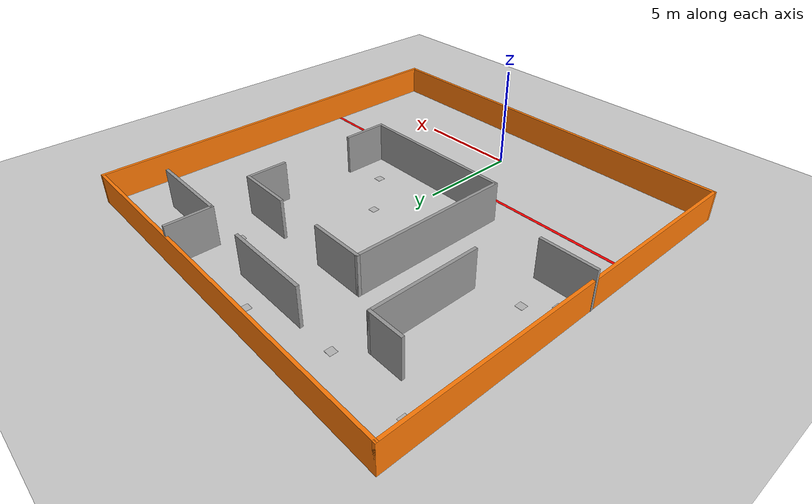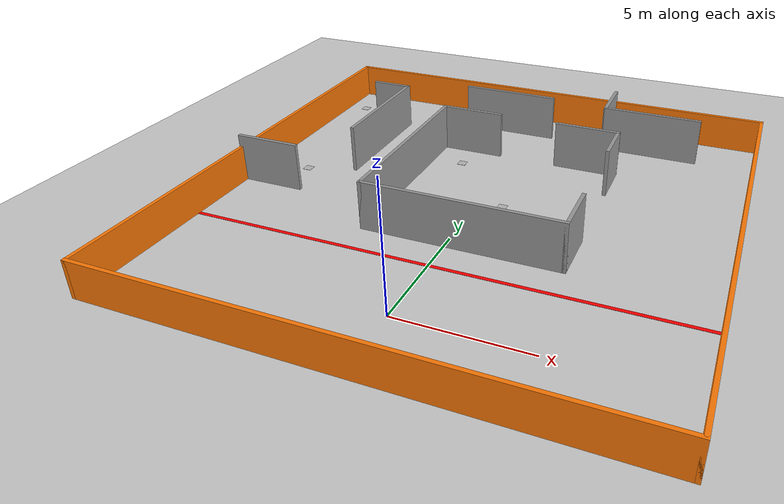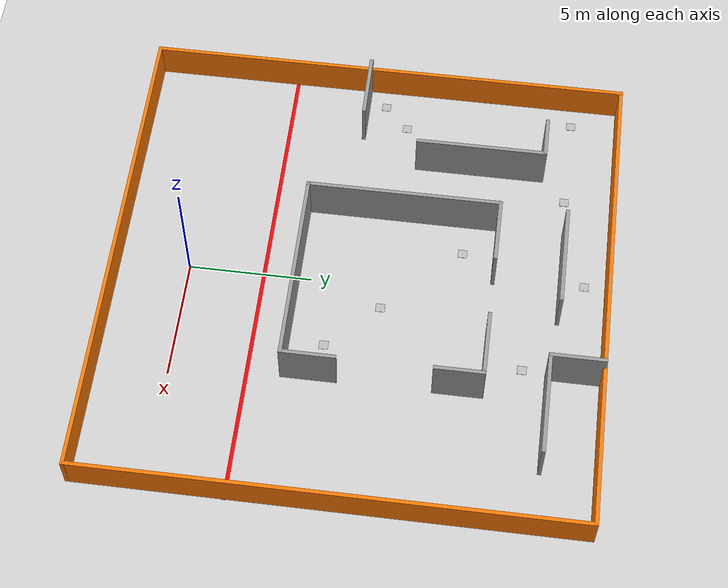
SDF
<sdf version="1.7">
 <world name="default">
  <model name="ground_plane">
   <static>1</static>
   <link name="link">
    <collision name="collision">
     <geometry><plane><normal>0 0 1</normal><size>100 100</size></plane></geometry>
     <surface>
      <contact><collide_bitmask>65535</collide_bitmask></contact>
      <friction><ode><mu>100</mu><mu2>50</mu2></ode></friction>
     </surface>
    </collision>
    <visual name="visual">
     <cast_shadows>0</cast_shadows>
     <geometry><plane><normal>0 0 1</normal><size>100 100</size></plane></geometry>
     <material>
      <script><uri>file://media/materials/scripts/gazebo.material</uri><name>Gazebo/Grey</name></script>
     </material>
    </visual>
   </link>
  </model>
  <model name="SAFMC_WALL_similar">
   <pose>0.020465 7 0 0 -0 0</pose>
   <link name="Wall_0">
    <collision name="Wall_0_Collision">
     <geometry><box><size>20 0.15 1.5</size></box></geometry>
     <pose>0 0 0.75 0 -0 0</pose>
    </collision>
    <visual name="Wall_0_Visual">
     <pose>0 0 0.75 0 -0 0</pose>
     <geometry><box><size>20 0.15 1.5</size></box></geometry>
     <material>
      <script><uri>file://media/materials/scripts/gazebo.material</uri><name>Gazebo/Grey</name></script>
      <ambient>0.996078 0.47451 0.0196078 1</ambient>
     </material>
     <meta><layer>0</layer></meta>
    </visual>
    <pose>-0.003 -9.925 0 0 -0 0</pose>
   </link>
   <link name="Wall_10">
    <collision name="Wall_10_Collision">
     <geometry><box><size>2.75 0.15 2</size></box></geometry>
     <pose>0 0 1 0 -0 0</pose>
    </collision>
    <visual name="Wall_10_Visual">
     <pose>0 0 1 0 -0 0</pose>
     <geometry><box><size>2.75 0.15 2</size></box></geometry>
     <material>
      <script><uri>file://media/materials/scripts/gazebo.material</uri><name>Gazebo/Grey</name></script>
      <ambient>0 0 0 1</ambient>
     </material>
     <meta><layer>0</layer></meta>
    </visual>
    <pose>-8.642 -0.751 0 0 -0 0</pose>
   </link>
   <link name="Wall_12">
    <collision name="Wall_12_Collision">
     <geometry><box><size>1.75 0.15 2</size></box></geometry>
     <pose>0 0 1 0 -0 0</pose>
    </collision>
    <visual name="Wall_12_Visual">
     <pose>0 0 1 0 -0 0</pose>
     <geometry><box><size>1.75 0.15 2</size></box></geometry>
     <material>
      <script><uri>file://media/materials/scripts/gazebo.material</uri><name>Gazebo/Grey</name></script>
      <ambient>0 0 0 1</ambient>
     </material>
     <meta><layer>0</layer></meta>
    </visual>
    <pose>-6.88992 6.92788 0 0 -0 0</pose>
   </link>
   <link name="Wall_13">
    <collision name="Wall_13_Collision">
     <geometry><box><size>5.40588 0.15 2</size></box></geometry>
     <pose>0 0 1 0 -0 0</pose>
    </collision>
    <visual name="Wall_13_Visual">
     <pose>0 0 1 0 -0 0</pose>
     <geometry><box><size>5.40588 0.15 2</size></box></geometry>
     <material>
      <script><uri>file://media/materials/scripts/gazebo.material</uri><name>Gazebo/Grey</name></script>
      <ambient>0 0 0 1</ambient>
     </material>
     <meta><layer>0</layer></meta>
    </visual>
    <pose>-6.05047 4.29994 0 0 -0 -1.5708</pose>
   </link>
   <link name="Wall_15">
    <collision name="Wall_15_Collision">
     <geometry><box><size>2.25 0.15 2</size></box></geometry>
     <pose>0 0 1 0 -0 0</pose>
    </collision>
    <visual name="Wall_15_Visual">
     <pose>0 0 1 0 -0 0</pose>
     <geometry><box><size>2.25 0.15 2</size></box></geometry>
     <material>
      <script><uri>file://media/materials/scripts/gazebo.material</uri><name>Gazebo/Grey</name></script>
      <ambient>0 0 0 1</ambient>
     </material>
     <meta><layer>0</layer></meta>
    </visual>
    <pose>3.3575 8.83 0 0 -0 -1.5708</pose>
   </link>
   <link name="Wall_18">
    <collision name="Wall_18_Collision">
     <geometry><box><size>4.198 0.15 2</size></box></geometry>
     <pose>0 0 1 0 -0 0</pose>
    </collision>
    <visual name="Wall_18_Visual">
     <pose>0 0 1 0 -0 0</pose>
     <geometry><box><size>4.198 0.15 2</size></box></geometry>
     <material>
      <script><uri>file://media/materials/scripts/gazebo.material</uri><name>Gazebo/Grey</name></script>
      <ambient>0 0 0 1</ambient>
     </material>
     <meta><layer>0</layer></meta>
    </visual>
    <pose>5.416 7.78 0 0 -0 0</pose>
   </link>
   <link name="Wall_2">
    <collision name="Wall_2_Collision">
     <geometry><box><size>20 0.15 1.5</size></box></geometry>
     <pose>0 0 0.75 0 -0 0</pose>
    </collision>
    <visual name="Wall_2_Visual">
     <pose>0 0 0.75 0 -0 0</pose>
     <geometry><box><size>20 0.15 1.5</size></box></geometry>
     <material>
      <script><uri>file://media/materials/scripts/gazebo.material</uri><name>Gazebo/Grey</name></script>
      <ambient>0.996078 0.47451 0.0196078 1</ambient>
     </material>
     <meta><layer>0</layer></meta>
    </visual>
    <pose>-9.928 -0 0 0 -0 1.5708</pose>
   </link>
   <link name="Wall_20">
    <collision name="Wall_20_Collision">
     <geometry><box><size>4.25 0.15 2</size></box></geometry>
     <pose>0 0 1 0 -0 0</pose>
    </collision>
    <visual name="Wall_20_Visual">
     <pose>0 0 1 0 -0 0</pose>
     <geometry><box><size>4.25 0.15 2</size></box></geometry>
     <material>
      <script><uri>file://media/materials/scripts/gazebo.material</uri><name>Gazebo/Grey</name></script>
      <ambient>0 0 0 1</ambient>
     </material>
     <meta><layer>0</layer></meta>
    </visual>
    <pose>-1.2353 8.03112 0 0 -0 0</pose>
   </link>
   <link name="Wall_22">
    <collision name="Wall_22_Collision">
     <geometry><box><size>8 0.15 2</size></box></geometry>
     <pose>0 0 1 0 -0 0</pose>
    </collision>
    <visual name="Wall_22_Visual">
     <pose>0 0 1 0 -0 0</pose>
     <geometry><box><size>8 0.15 2</size></box></geometry>
     <material>
      <script><uri>file://media/materials/scripts/gazebo.material</uri><name>Gazebo/Grey</name></script>
      <ambient>0 0 0 1</ambient>
     </material>
     <meta><layer>0</layer></meta>
    </visual>
    <pose>-3.36412 1.386 0 0 -0 -1.5708</pose>
   </link>
   <link name="Wall_24">
    <collision name="Wall_24_Collision">
     <geometry><box><size>8 0.15 2</size></box></geometry>
     <pose>0 0 1 0 -0 0</pose>
    </collision>
    <visual name="Wall_24_Visual">
     <pose>0 0 1 0 -0 0</pose>
     <geometry><box><size>8 0.15 2</size></box></geometry>
     <material>
      <script><uri>file://media/materials/scripts/gazebo.material</uri><name>Gazebo/Grey</name></script>
      <ambient>0 0 0 1</ambient>
     </material>
     <meta><layer>0</layer></meta>
    </visual>
    <pose>0.560883 -2.539 0 0 -0 0</pose>
   </link>
   <link name="Wall_26">
    <collision name="Wall_26_Collision">
     <geometry><box><size>2.25 0.15 2</size></box></geometry>
     <pose>0 0 1 0 -0 0</pose>
    </collision>
    <visual name="Wall_26_Visual">
     <pose>0 0 1 0 -0 0</pose>
     <geometry><box><size>2.25 0.15 2</size></box></geometry>
     <material>
      <script><uri>file://media/materials/scripts/gazebo.material</uri><name>Gazebo/Grey</name></script>
      <ambient>0 0 0 1</ambient>
     </material>
     <meta><layer>0</layer></meta>
    </visual>
    <pose>4.48588 -1.489 0 0 -0 1.5708</pose>
   </link>
   <link name="Wall_28">
    <collision name="Wall_28_Collision">
     <geometry><box><size>2.75 0.15 2</size></box></geometry>
     <pose>0 0 1 0 -0 0</pose>
    </collision>
    <visual name="Wall_28_Visual">
     <pose>0 0 1 0 -0 0</pose>
     <geometry><box><size>2.75 0.15 2</size></box></geometry>
     <material>
      <script><uri>file://media/materials/scripts/gazebo.material</uri><name>Gazebo/Grey</name></script>
      <ambient>0 0 0 1</ambient>
     </material>
     <meta><layer>0</layer></meta>
    </visual>
    <pose>-2.06412 5.311 0 0 -0 0</pose>
   </link>
   <link name="Wall_30">
    <collision name="Wall_30_Collision">
     <geometry><box><size>2.75 0.15 2</size></box></geometry>
     <pose>0 0 1 0 -0 0</pose>
    </collision>
    <visual name="Wall_30_Visual">
     <pose>0 0 1 0 -0 0</pose>
     <geometry><box><size>2.75 0.15 2</size></box></geometry>
     <material>
      <script><uri>file://media/materials/scripts/gazebo.material</uri><name>Gazebo/Grey</name></script>
      <ambient>0 0 0 1</ambient>
     </material>
     <meta><layer>0</layer></meta>
    </visual>
    <pose>3.16318 5.3137 0 0 -0 0</pose>
   </link>
   <link name="Wall_31">
    <collision name="Wall_31_Collision">
     <geometry><box><size>2 0.15 2</size></box></geometry>
     <pose>0 0 1 0 -0 0</pose>
    </collision>
    <visual name="Wall_31_Visual">
     <pose>0 0 1 0 -0 0</pose>
     <geometry><box><size>2 0.15 2</size></box></geometry>
     <material>
      <script><uri>file://media/materials/scripts/gazebo.material</uri><name>Gazebo/Grey</name></script>
      <ambient>0 0 0 1</ambient>
     </material>
     <meta><layer>0</layer></meta>
    </visual>
    <pose>4.46318 4.3624 0 0 -0 -1.5708</pose>
   </link>
   <link name="Wall_4">
    <collision name="Wall_4_Collision">
     <geometry><box><size>20 0.15 1.5</size></box></geometry>
     <pose>0 0 0.75 0 -0 0</pose>
    </collision>
    <visual name="Wall_4_Visual">
     <pose>0 0 0.75 0 -0 0</pose>
     <geometry><box><size>20 0.15 1.5</size></box></geometry>
     <material>
      <script><uri>file://media/materials/scripts/gazebo.material</uri><name>Gazebo/Grey</name></script>
      <ambient>0.996078 0.47451 0.0196078 1</ambient>
     </material>
     <meta><layer>0</layer></meta>
    </visual>
    <pose>-0.003 9.925 0 0 -0 0</pose>
   </link>
   <link name="Wall_6">
    <collision name="Wall_6_Collision">
     <geometry><box><size>20 0.15 1.5</size></box></geometry>
     <pose>0 0 0.75 0 -0 0</pose>
    </collision>
    <visual name="Wall_6_Visual">
     <pose>0 0 0.75 0 -0 0</pose>
     <geometry><box><size>20 0.15 1.5</size></box></geometry>
     <material>
      <script><uri>file://media/materials/scripts/gazebo.material</uri><name>Gazebo/Grey</name></script>
      <ambient>0.996078 0.47451 0.0196078 1</ambient>
     </material>
     <meta><layer>0</layer></meta>
    </visual>
    <pose>9.922 -0 0 0 -0 -1.5708</pose>
   </link>
   <link name="Wall_8">
    <collision name="Wall_8_Collision">
     <geometry><box><size>20 0.15 0.01</size></box></geometry>
     <pose>0 0 0.005 0 -0 0</pose>
    </collision>
    <visual name="Wall_8_Visual">
     <pose>0 0 0.005 0 -0 0</pose>
     <geometry><box><size>20 0.15 0.01</size></box></geometry>
     <material>
      <script><uri>file://media/materials/scripts/gazebo.material</uri><name>Gazebo/Grey</name></script>
      <ambient>1 0 0 1</ambient>
     </material>
     <meta><layer>0</layer></meta>
    </visual>
    <pose>0.017 -3.925 0 0 -0 0</pose>
   </link>
   <static>1</static>
  </model>
  <model name="Tag36h11_0">
   <static>1</static>
   <link name="link">
    <collision name="collision"><geometry><box><size>0.3702 0.3702 0.01</size></box></geometry></collision>
    <visual name="visual">
     <cast_shadows>0</cast_shadows>
     <geometry><box><size>0.3702 0.3702 0.01</size></box></geometry>
     <material>
      <script>
       <uri>model://Tag36h11_0/materials/scripts</uri>
       <uri>model://Tag36h11_0/materials/textures</uri>
       <name>Tag36h11_0</name>
      </script>
     </material>
    </visual>
   </link>
   <pose>-9.00217 14.9952 0 0 -0 0</pose>
  </model>
  <model name="Tag36h11_0_clone">
   <static>1</static>
   <link name="link">
    <collision name="collision"><geometry><box><size>0.3702 0.3702 0.01</size></box></geometry></collision>
    <visual name="visual">
     <cast_shadows>0</cast_shadows>
     <geometry><box><size>0.3702 0.3702 0.01</size></box></geometry>
     <material>
      <script>
       <uri>model://Tag36h11_0/materials/scripts</uri>
       <uri>model://Tag36h11_0/materials/textures</uri>
       <name>Tag36h11_0</name>
      </script>
     </material>
    </visual>
   </link>
   <pose>-1.00483 16.0185 0 0 -0 0</pose>
  </model>
  <model name="Tag36h11_0_clone_3">
   <static>1</static>
   <link name="link">
    <collision name="collision"><geometry><box><size>0.3702 0.3702 0.01</size></box></geometry></collision>
    <visual name="visual">
     <cast_shadows>0</cast_shadows>
     <geometry><box><size>0.3702 0.3702 0.01</size></box></geometry>
     <material>
      <script>
       <uri>model://Tag36h11_0/materials/scripts</uri>
       <uri>model://Tag36h11_0/materials/textures</uri>
       <name>Tag36h11_0</name>
      </script>
     </material>
    </visual>
   </link>
   <pose>-9.05823 7.02638 0 0 -0 0</pose>
  </model>
  <model name="Tag36h11_0_clone_5">
   <static>1</static>
   <link name="link">
    <collision name="collision"><geometry><box><size>0.3702 0.3702 0.01</size></box></geometry></collision>
    <visual name="visual">
     <cast_shadows>0</cast_shadows>
     <geometry><box><size>0.3702 0.3702 0.01</size></box></geometry>
     <material>
      <script>
       <uri>model://Tag36h11_0/materials/scripts</uri>
       <uri>model://Tag36h11_0/materials/textures</uri>
       <name>Tag36h11_0</name>
      </script>
     </material>
    </visual>
   </link>
   <pose>2.95415 5.90787 0 0 -0 0</pose>
  </model>
  <model name="Tag36h11_0_clone_2">
   <static>1</static>
   <link name="link">
    <collision name="collision"><geometry><box><size>0.3702 0.3702 0.01</size></box></geometry></collision>
    <visual name="visual">
     <cast_shadows>0</cast_shadows>
     <geometry><box><size>0.3702 0.3702 0.01</size></box></geometry>
     <material>
      <script>
       <uri>model://Tag36h11_0/materials/scripts</uri>
       <uri>model://Tag36h11_0/materials/textures</uri>
       <name>Tag36h11_0</name>
      </script>
     </material>
    </visual>
   </link>
   <pose>-1.98662 10.9788 0 0 -0 0</pose>
  </model>
  <model name="Tag36h11_1">
   <static>1</static>
   <link name="link">
    <collision name="collision"><geometry><box><size>0.3702 0.3702 0.01</size></box></geometry></collision>
    <visual name="visual">
     <cast_shadows>0</cast_shadows>
     <geometry><box><size>0.3702 0.3702 0.01</size></box></geometry>
     <material>
      <script>
       <uri>model://Tag36h11_1/materials/scripts</uri>
       <uri>model://Tag36h11_1/materials/textures</uri>
       <name>Tag36h11_1</name>
      </script>
     </material>
    </visual>
   </link>
   <pose>3.12158 13.7998 0 0 -0 0</pose>
  </model>
  <model name="Tag36h11_1_clone">
   <static>1</static>
   <link name="link">
    <collision name="collision"><geometry><box><size>0.3702 0.3702 0.01</size></box></geometry></collision>
    <visual name="visual">
     <cast_shadows>0</cast_shadows>
     <geometry><box><size>0.3702 0.3702 0.01</size></box></geometry>
     <material>
      <script>
       <uri>model://Tag36h11_1/materials/scripts</uri>
       <uri>model://Tag36h11_1/materials/textures</uri>
       <name>Tag36h11_1</name>
      </script>
     </material>
    </visual>
   </link>
   <pose>-8.02315 8.03827 0 0 -0 0</pose>
  </model>
  <model name="Tag36h11_1_clone_0">
   <static>1</static>
   <link name="link">
    <collision name="collision"><geometry><box><size>0.3702 0.3702 0.01</size></box></geometry></collision>
    <visual name="visual">
     <cast_shadows>0</cast_shadows>
     <geometry><box><size>0.3702 0.3702 0.01</size></box></geometry>
     <material>
      <script>
       <uri>model://Tag36h11_1/materials/scripts</uri>
       <uri>model://Tag36h11_1/materials/textures</uri>
       <name>Tag36h11_1</name>
      </script>
     </material>
    </visual>
   </link>
   <pose>-5.03918 14.9523 0 0 -0 0</pose>
  </model>
  <model name="Tag36h11_1_clone_1">
   <static>1</static>
   <link name="link">
    <collision name="collision"><geometry><box><size>0.3702 0.3702 0.01</size></box></geometry></collision>
    <visual name="visual">
     <cast_shadows>0</cast_shadows>
     <geometry><box><size>0.3702 0.3702 0.01</size></box></geometry>
     <material>
      <script>
       <uri>model://Tag36h11_1/materials/scripts</uri>
       <uri>model://Tag36h11_1/materials/textures</uri>
       <name>Tag36h11_1</name>
      </script>
     </material>
    </visual>
   </link>
   <pose>0.977532 7.93976 0 0 -0 0</pose>
  </model>
 </world>
</sdf>
